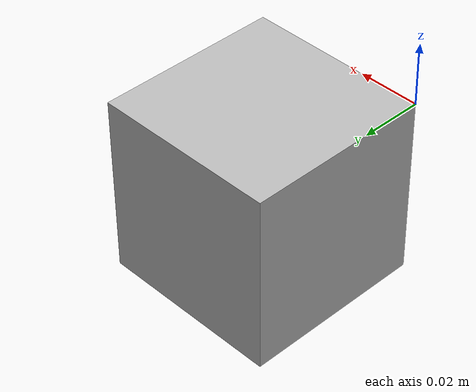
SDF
<?xml version="1.0" ?>
<sdf version="1.4">
  <model name="cube">
    <static>0</static>
    <link name="link">

      <inertial>
        <mass>0.216</mass>
        <inertia>
          <ixx>0.0001296</ixx>
          <ixy>0.000000</ixy>
          <ixz>0.000000</ixz>
          <iyy>0.0001296</iyy>
          <iyz>0.000000</iyz>
          <izz>0.0001296</izz>
        </inertia>
      </inertial>

      <collision name="colision">
        <pose>0 0 0 0 0 0</pose>
          <geometry>
          <mesh>
            <uri>model://cube/meshes/cube.STL</uri>
	    <scale> 1 1 1 </scale>
          </mesh>
          </geometry>
        <surface>
          <friction>
            <ode>
              <mu>100000.0</mu>
              <mu2>100000.0</mu2>
              <fdir1>0 0 0</fdir1>
            </ode>
          </friction>
          <contact>
            <ode>
              <kp>1000000.0</kp>
              <kd>100.0</kd>
              <min_depth>0.0025</min_depth>
              <max_vel>1.0</max_vel>
            </ode>
          </contact>
        </surface>
      </collision>

      <visual name="visual">
        <pose>0 0 0 0 0 0</pose>
        <geometry>
          <mesh>
            <uri>model://cube/meshes/cube.STL</uri>
	    <scale> 1 1 1 </scale>
          </mesh>
        </geometry>
        <!-- color (gazebo material) -->
        <material name="Black"/>
      </visual>

      <velocity_decay>
        <linear>0.000000</linear>
        <angular>0.000000</angular>
      </velocity_decay>
      <self_collide>0</self_collide>
      <kinematic>0</kinematic>
      <gravity>1</gravity>
    </link>
  </model>
</sdf>
